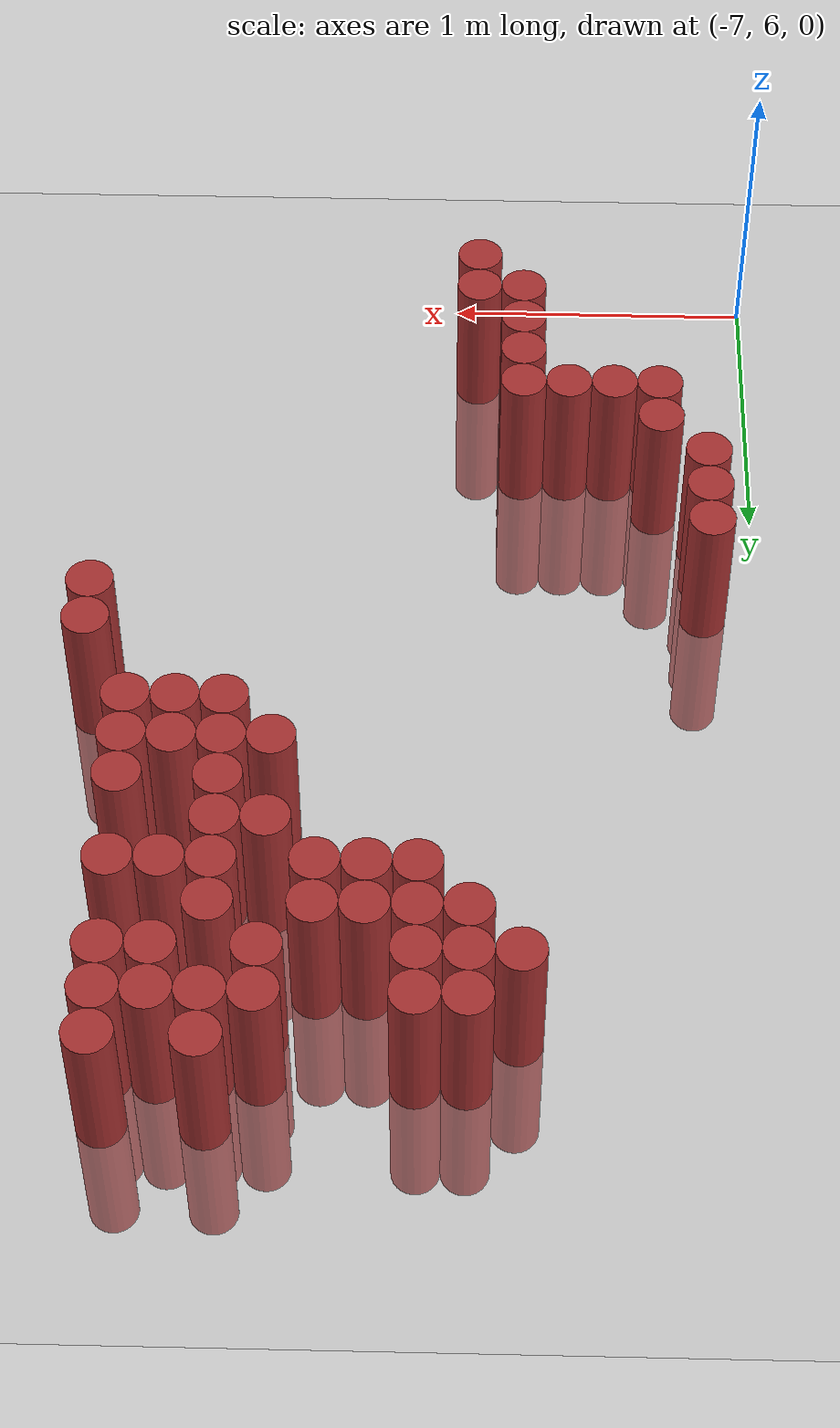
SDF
<sdf version="1.6">
 <world name="default">
  <model name="ground_plane">
   <static>1</static>
   <link name="link">
    <collision name="collision">
     <geometry><plane><normal>0 0 1</normal><size>100 100</size></plane></geometry>
     <surface><friction><ode><mu>100</mu><mu2>50</mu2></ode></friction></surface>
    </collision>
    <visual name="visual">
     <cast_shadows>0</cast_shadows>
     <geometry><plane><normal>0 0 1</normal><size>100 100</size></plane></geometry>
     <material>
      <script><uri>file://media/materials/scripts/gazebo.material</uri><name>Gazebo/Grey</name></script>
     </material>
    </visual>
   </link>
  </model>
  <model name="unit_cylinder_197">
   <static>1</static>
   <pose>-6.825000 7.125000 0.000000 0.000000 0.000000 0.000000</pose>
   <link name="link">
    <inertial>
     <mass>1</mass>
     <inertia><ixx>0.145833</ixx><ixy>0</ixy><ixz>0</ixz><iyy>0.145833</iyy><iyz>0</iyz><izz>0.125</izz></inertia>
    </inertial>
    <collision name="collision">
     <geometry><cylinder><radius>0.075000</radius><length>1</length></cylinder></geometry>
    </collision>
    <visual name="visual">
     <geometry><cylinder><radius>0.075000</radius><length>1</length></cylinder></geometry>
     <material>
      <ambient>0.648000 0.192000 0.192000 1</ambient>
      <diffuse>0.648000 0.192000 0.192000 1</diffuse>
     </material>
     <material>
      <script><name>Gazebo/Grey</name><uri>file://media/materials/scripts/gazebo.material</uri></script>
     </material>
    </visual>
   </link>
  </model>
  <model name="unit_cylinder_198">
   <static>1</static>
   <pose>-6.825000 7.275000 0.000000 0.000000 0.000000 0.000000</pose>
   <link name="link">
    <inertial>
     <mass>1</mass>
     <inertia><ixx>0.145833</ixx><ixy>0</ixy><ixz>0</ixz><iyy>0.145833</iyy><iyz>0</iyz><izz>0.125</izz></inertia>
    </inertial>
    <collision name="collision">
     <geometry><cylinder><radius>0.075000</radius><length>1</length></cylinder></geometry>
    </collision>
    <visual name="visual">
     <geometry><cylinder><radius>0.075000</radius><length>1</length></cylinder></geometry>
     <material>
      <ambient>0.648000 0.192000 0.192000 1</ambient>
      <diffuse>0.648000 0.192000 0.192000 1</diffuse>
     </material>
     <material>
      <script><name>Gazebo/Grey</name><uri>file://media/materials/scripts/gazebo.material</uri></script>
     </material>
    </visual>
   </link>
  </model>
  <model name="unit_cylinder_199">
   <static>1</static>
   <pose>-6.825000 7.425000 0.000000 0.000000 0.000000 0.000000</pose>
   <link name="link">
    <inertial>
     <mass>1</mass>
     <inertia><ixx>0.145833</ixx><ixy>0</ixy><ixz>0</ixz><iyy>0.145833</iyy><iyz>0</iyz><izz>0.125</izz></inertia>
    </inertial>
    <collision name="collision">
     <geometry><cylinder><radius>0.075000</radius><length>1</length></cylinder></geometry>
    </collision>
    <visual name="visual">
     <geometry><cylinder><radius>0.075000</radius><length>1</length></cylinder></geometry>
     <material>
      <ambient>0.648000 0.192000 0.192000 1</ambient>
      <diffuse>0.648000 0.192000 0.192000 1</diffuse>
     </material>
     <material>
      <script><name>Gazebo/Grey</name><uri>file://media/materials/scripts/gazebo.material</uri></script>
     </material>
    </visual>
   </link>
  </model>
  <model name="unit_cylinder_201">
   <static>1</static>
   <pose>-6.675000 6.825000 0.000000 0.000000 0.000000 0.000000</pose>
   <link name="link">
    <inertial>
     <mass>1</mass>
     <inertia><ixx>0.145833</ixx><ixy>0</ixy><ixz>0</ixz><iyy>0.145833</iyy><iyz>0</iyz><izz>0.125</izz></inertia>
    </inertial>
    <collision name="collision">
     <geometry><cylinder><radius>0.075000</radius><length>1</length></cylinder></geometry>
    </collision>
    <visual name="visual">
     <geometry><cylinder><radius>0.075000</radius><length>1</length></cylinder></geometry>
     <material>
      <ambient>0.648000 0.192000 0.192000 1</ambient>
      <diffuse>0.648000 0.192000 0.192000 1</diffuse>
     </material>
     <material>
      <script><name>Gazebo/Grey</name><uri>file://media/materials/scripts/gazebo.material</uri></script>
     </material>
    </visual>
   </link>
  </model>
  <model name="unit_cylinder_202">
   <static>1</static>
   <pose>-6.675000 6.975000 0.000000 0.000000 0.000000 0.000000</pose>
   <link name="link">
    <inertial>
     <mass>1</mass>
     <inertia><ixx>0.145833</ixx><ixy>0</ixy><ixz>0</ixz><iyy>0.145833</iyy><iyz>0</iyz><izz>0.125</izz></inertia>
    </inertial>
    <collision name="collision">
     <geometry><cylinder><radius>0.075000</radius><length>1</length></cylinder></geometry>
    </collision>
    <visual name="visual">
     <geometry><cylinder><radius>0.075000</radius><length>1</length></cylinder></geometry>
     <material>
      <ambient>0.648000 0.192000 0.192000 1</ambient>
      <diffuse>0.648000 0.192000 0.192000 1</diffuse>
     </material>
     <material>
      <script><name>Gazebo/Grey</name><uri>file://media/materials/scripts/gazebo.material</uri></script>
     </material>
    </visual>
   </link>
  </model>
  <model name="unit_cylinder_204">
   <static>1</static>
   <pose>-6.525000 6.825000 0.000000 0.000000 0.000000 0.000000</pose>
   <link name="link">
    <inertial>
     <mass>1</mass>
     <inertia><ixx>0.145833</ixx><ixy>0</ixy><ixz>0</ixz><iyy>0.145833</iyy><iyz>0</iyz><izz>0.125</izz></inertia>
    </inertial>
    <collision name="collision">
     <geometry><cylinder><radius>0.075000</radius><length>1</length></cylinder></geometry>
    </collision>
    <visual name="visual">
     <geometry><cylinder><radius>0.075000</radius><length>1</length></cylinder></geometry>
     <material>
      <ambient>0.648000 0.192000 0.192000 1</ambient>
      <diffuse>0.648000 0.192000 0.192000 1</diffuse>
     </material>
     <material>
      <script><name>Gazebo/Grey</name><uri>file://media/materials/scripts/gazebo.material</uri></script>
     </material>
    </visual>
   </link>
  </model>
  <model name="unit_cylinder_206">
   <static>1</static>
   <pose>-6.375000 6.825000 0.000000 0.000000 0.000000 0.000000</pose>
   <link name="link">
    <inertial>
     <mass>1</mass>
     <inertia><ixx>0.145833</ixx><ixy>0</ixy><ixz>0</ixz><iyy>0.145833</iyy><iyz>0</iyz><izz>0.125</izz></inertia>
    </inertial>
    <collision name="collision">
     <geometry><cylinder><radius>0.075000</radius><length>1</length></cylinder></geometry>
    </collision>
    <visual name="visual">
     <geometry><cylinder><radius>0.075000</radius><length>1</length></cylinder></geometry>
     <material>
      <ambient>0.648000 0.192000 0.192000 1</ambient>
      <diffuse>0.648000 0.192000 0.192000 1</diffuse>
     </material>
     <material>
      <script><name>Gazebo/Grey</name><uri>file://media/materials/scripts/gazebo.material</uri></script>
     </material>
    </visual>
   </link>
  </model>
  <model name="unit_cylinder_208">
   <static>1</static>
   <pose>-6.225000 6.375000 0.000000 0.000000 0.000000 0.000000</pose>
   <link name="link">
    <inertial>
     <mass>1</mass>
     <inertia><ixx>0.145833</ixx><ixy>0</ixy><ixz>0</ixz><iyy>0.145833</iyy><iyz>0</iyz><izz>0.125</izz></inertia>
    </inertial>
    <collision name="collision">
     <geometry><cylinder><radius>0.075000</radius><length>1</length></cylinder></geometry>
    </collision>
    <visual name="visual">
     <geometry><cylinder><radius>0.075000</radius><length>1</length></cylinder></geometry>
     <material>
      <ambient>0.648000 0.192000 0.192000 1</ambient>
      <diffuse>0.648000 0.192000 0.192000 1</diffuse>
     </material>
     <material>
      <script><name>Gazebo/Grey</name><uri>file://media/materials/scripts/gazebo.material</uri></script>
     </material>
    </visual>
   </link>
  </model>
  <model name="unit_cylinder_209">
   <static>1</static>
   <pose>-6.225000 6.525000 0.000000 0.000000 0.000000 0.000000</pose>
   <link name="link">
    <inertial>
     <mass>1</mass>
     <inertia><ixx>0.145833</ixx><ixy>0</ixy><ixz>0</ixz><iyy>0.145833</iyy><iyz>0</iyz><izz>0.125</izz></inertia>
    </inertial>
    <collision name="collision">
     <geometry><cylinder><radius>0.075000</radius><length>1</length></cylinder></geometry>
    </collision>
    <visual name="visual">
     <geometry><cylinder><radius>0.075000</radius><length>1</length></cylinder></geometry>
     <material>
      <ambient>0.648000 0.192000 0.192000 1</ambient>
      <diffuse>0.648000 0.192000 0.192000 1</diffuse>
     </material>
     <material>
      <script><name>Gazebo/Grey</name><uri>file://media/materials/scripts/gazebo.material</uri></script>
     </material>
    </visual>
   </link>
  </model>
  <model name="unit_cylinder_210">
   <static>1</static>
   <pose>-6.225000 6.675000 0.000000 0.000000 0.000000 0.000000</pose>
   <link name="link">
    <inertial>
     <mass>1</mass>
     <inertia><ixx>0.145833</ixx><ixy>0</ixy><ixz>0</ixz><iyy>0.145833</iyy><iyz>0</iyz><izz>0.125</izz></inertia>
    </inertial>
    <collision name="collision">
     <geometry><cylinder><radius>0.075000</radius><length>1</length></cylinder></geometry>
    </collision>
    <visual name="visual">
     <geometry><cylinder><radius>0.075000</radius><length>1</length></cylinder></geometry>
     <material>
      <ambient>0.648000 0.192000 0.192000 1</ambient>
      <diffuse>0.648000 0.192000 0.192000 1</diffuse>
     </material>
     <material>
      <script><name>Gazebo/Grey</name><uri>file://media/materials/scripts/gazebo.material</uri></script>
     </material>
    </visual>
   </link>
  </model>
  <model name="unit_cylinder_211">
   <static>1</static>
   <pose>-6.225000 6.825000 0.000000 0.000000 0.000000 0.000000</pose>
   <link name="link">
    <inertial>
     <mass>1</mass>
     <inertia><ixx>0.145833</ixx><ixy>0</ixy><ixz>0</ixz><iyy>0.145833</iyy><iyz>0</iyz><izz>0.125</izz></inertia>
    </inertial>
    <collision name="collision">
     <geometry><cylinder><radius>0.075000</radius><length>1</length></cylinder></geometry>
    </collision>
    <visual name="visual">
     <geometry><cylinder><radius>0.075000</radius><length>1</length></cylinder></geometry>
     <material>
      <ambient>0.648000 0.192000 0.192000 1</ambient>
      <diffuse>0.648000 0.192000 0.192000 1</diffuse>
     </material>
     <material>
      <script><name>Gazebo/Grey</name><uri>file://media/materials/scripts/gazebo.material</uri></script>
     </material>
    </visual>
   </link>
  </model>
  <model name="unit_cylinder_212">
   <static>1</static>
   <pose>-6.225000 9.075000 0.000000 0.000000 0.000000 0.000000</pose>
   <link name="link">
    <inertial>
     <mass>1</mass>
     <inertia><ixx>0.145833</ixx><ixy>0</ixy><ixz>0</ixz><iyy>0.145833</iyy><iyz>0</iyz><izz>0.125</izz></inertia>
    </inertial>
    <collision name="collision">
     <geometry><cylinder><radius>0.075000</radius><length>1</length></cylinder></geometry>
    </collision>
    <visual name="visual">
     <geometry><cylinder><radius>0.075000</radius><length>1</length></cylinder></geometry>
     <material>
      <ambient>0.648000 0.192000 0.192000 1</ambient>
      <diffuse>0.648000 0.192000 0.192000 1</diffuse>
     </material>
     <material>
      <script><name>Gazebo/Grey</name><uri>file://media/materials/scripts/gazebo.material</uri></script>
     </material>
    </visual>
   </link>
  </model>
  <model name="unit_cylinder_220">
   <static>1</static>
   <pose>-6.075000 6.225000 0.000000 0.000000 0.000000 0.000000</pose>
   <link name="link">
    <inertial>
     <mass>1</mass>
     <inertia><ixx>0.145833</ixx><ixy>0</ixy><ixz>0</ixz><iyy>0.145833</iyy><iyz>0</iyz><izz>0.125</izz></inertia>
    </inertial>
    <collision name="collision">
     <geometry><cylinder><radius>0.075000</radius><length>1</length></cylinder></geometry>
    </collision>
    <visual name="visual">
     <geometry><cylinder><radius>0.075000</radius><length>1</length></cylinder></geometry>
     <material>
      <ambient>0.648000 0.192000 0.192000 1</ambient>
      <diffuse>0.648000 0.192000 0.192000 1</diffuse>
     </material>
     <material>
      <script><name>Gazebo/Grey</name><uri>file://media/materials/scripts/gazebo.material</uri></script>
     </material>
    </visual>
   </link>
  </model>
  <model name="unit_cylinder_221">
   <static>1</static>
   <pose>-6.075000 6.375000 0.000000 0.000000 0.000000 0.000000</pose>
   <link name="link">
    <inertial>
     <mass>1</mass>
     <inertia><ixx>0.145833</ixx><ixy>0</ixy><ixz>0</ixz><iyy>0.145833</iyy><iyz>0</iyz><izz>0.125</izz></inertia>
    </inertial>
    <collision name="collision">
     <geometry><cylinder><radius>0.075000</radius><length>1</length></cylinder></geometry>
    </collision>
    <visual name="visual">
     <geometry><cylinder><radius>0.075000</radius><length>1</length></cylinder></geometry>
     <material>
      <ambient>0.648000 0.192000 0.192000 1</ambient>
      <diffuse>0.648000 0.192000 0.192000 1</diffuse>
     </material>
     <material>
      <script><name>Gazebo/Grey</name><uri>file://media/materials/scripts/gazebo.material</uri></script>
     </material>
    </visual>
   </link>
  </model>
  <model name="unit_cylinder_222">
   <static>1</static>
   <pose>-6.075000 8.925000 0.000000 0.000000 0.000000 0.000000</pose>
   <link name="link">
    <inertial>
     <mass>1</mass>
     <inertia><ixx>0.145833</ixx><ixy>0</ixy><ixz>0</ixz><iyy>0.145833</iyy><iyz>0</iyz><izz>0.125</izz></inertia>
    </inertial>
    <collision name="collision">
     <geometry><cylinder><radius>0.075000</radius><length>1</length></cylinder></geometry>
    </collision>
    <visual name="visual">
     <geometry><cylinder><radius>0.075000</radius><length>1</length></cylinder></geometry>
     <material>
      <ambient>0.648000 0.192000 0.192000 1</ambient>
      <diffuse>0.648000 0.192000 0.192000 1</diffuse>
     </material>
     <material>
      <script><name>Gazebo/Grey</name><uri>file://media/materials/scripts/gazebo.material</uri></script>
     </material>
    </visual>
   </link>
  </model>
  <model name="unit_cylinder_223">
   <static>1</static>
   <pose>-6.075000 9.075000 0.000000 0.000000 0.000000 0.000000</pose>
   <link name="link">
    <inertial>
     <mass>1</mass>
     <inertia><ixx>0.145833</ixx><ixy>0</ixy><ixz>0</ixz><iyy>0.145833</iyy><iyz>0</iyz><izz>0.125</izz></inertia>
    </inertial>
    <collision name="collision">
     <geometry><cylinder><radius>0.075000</radius><length>1</length></cylinder></geometry>
    </collision>
    <visual name="visual">
     <geometry><cylinder><radius>0.075000</radius><length>1</length></cylinder></geometry>
     <material>
      <ambient>0.648000 0.192000 0.192000 1</ambient>
      <diffuse>0.648000 0.192000 0.192000 1</diffuse>
     </material>
     <material>
      <script><name>Gazebo/Grey</name><uri>file://media/materials/scripts/gazebo.material</uri></script>
     </material>
    </visual>
   </link>
  </model>
  <model name="unit_cylinder_224">
   <static>1</static>
   <pose>-6.075000 9.225000 0.000000 0.000000 0.000000 0.000000</pose>
   <link name="link">
    <inertial>
     <mass>1</mass>
     <inertia><ixx>0.145833</ixx><ixy>0</ixy><ixz>0</ixz><iyy>0.145833</iyy><iyz>0</iyz><izz>0.125</izz></inertia>
    </inertial>
    <collision name="collision">
     <geometry><cylinder><radius>0.075000</radius><length>1</length></cylinder></geometry>
    </collision>
    <visual name="visual">
     <geometry><cylinder><radius>0.075000</radius><length>1</length></cylinder></geometry>
     <material>
      <ambient>0.648000 0.192000 0.192000 1</ambient>
      <diffuse>0.648000 0.192000 0.192000 1</diffuse>
     </material>
     <material>
      <script><name>Gazebo/Grey</name><uri>file://media/materials/scripts/gazebo.material</uri></script>
     </material>
    </visual>
   </link>
  </model>
  <model name="unit_cylinder_225">
   <static>1</static>
   <pose>-5.925000 8.775000 0.000000 0.000000 0.000000 0.000000</pose>
   <link name="link">
    <inertial>
     <mass>1</mass>
     <inertia><ixx>0.145833</ixx><ixy>0</ixy><ixz>0</ixz><iyy>0.145833</iyy><iyz>0</iyz><izz>0.125</izz></inertia>
    </inertial>
    <collision name="collision">
     <geometry><cylinder><radius>0.075000</radius><length>1</length></cylinder></geometry>
    </collision>
    <visual name="visual">
     <geometry><cylinder><radius>0.075000</radius><length>1</length></cylinder></geometry>
     <material>
      <ambient>0.648000 0.192000 0.192000 1</ambient>
      <diffuse>0.648000 0.192000 0.192000 1</diffuse>
     </material>
     <material>
      <script><name>Gazebo/Grey</name><uri>file://media/materials/scripts/gazebo.material</uri></script>
     </material>
    </visual>
   </link>
  </model>
  <model name="unit_cylinder_226">
   <static>1</static>
   <pose>-5.925000 8.925000 0.000000 0.000000 0.000000 0.000000</pose>
   <link name="link">
    <inertial>
     <mass>1</mass>
     <inertia><ixx>0.145833</ixx><ixy>0</ixy><ixz>0</ixz><iyy>0.145833</iyy><iyz>0</iyz><izz>0.125</izz></inertia>
    </inertial>
    <collision name="collision">
     <geometry><cylinder><radius>0.075000</radius><length>1</length></cylinder></geometry>
    </collision>
    <visual name="visual">
     <geometry><cylinder><radius>0.075000</radius><length>1</length></cylinder></geometry>
     <material>
      <ambient>0.648000 0.192000 0.192000 1</ambient>
      <diffuse>0.648000 0.192000 0.192000 1</diffuse>
     </material>
     <material>
      <script><name>Gazebo/Grey</name><uri>file://media/materials/scripts/gazebo.material</uri></script>
     </material>
    </visual>
   </link>
  </model>
  <model name="unit_cylinder_227">
   <static>1</static>
   <pose>-5.925000 9.075000 0.000000 0.000000 0.000000 0.000000</pose>
   <link name="link">
    <inertial>
     <mass>1</mass>
     <inertia><ixx>0.145833</ixx><ixy>0</ixy><ixz>0</ixz><iyy>0.145833</iyy><iyz>0</iyz><izz>0.125</izz></inertia>
    </inertial>
    <collision name="collision">
     <geometry><cylinder><radius>0.075000</radius><length>1</length></cylinder></geometry>
    </collision>
    <visual name="visual">
     <geometry><cylinder><radius>0.075000</radius><length>1</length></cylinder></geometry>
     <material>
      <ambient>0.648000 0.192000 0.192000 1</ambient>
      <diffuse>0.648000 0.192000 0.192000 1</diffuse>
     </material>
     <material>
      <script><name>Gazebo/Grey</name><uri>file://media/materials/scripts/gazebo.material</uri></script>
     </material>
    </visual>
   </link>
  </model>
  <model name="unit_cylinder_228">
   <static>1</static>
   <pose>-5.925000 9.225000 0.000000 0.000000 0.000000 0.000000</pose>
   <link name="link">
    <inertial>
     <mass>1</mass>
     <inertia><ixx>0.145833</ixx><ixy>0</ixy><ixz>0</ixz><iyy>0.145833</iyy><iyz>0</iyz><izz>0.125</izz></inertia>
    </inertial>
    <collision name="collision">
     <geometry><cylinder><radius>0.075000</radius><length>1</length></cylinder></geometry>
    </collision>
    <visual name="visual">
     <geometry><cylinder><radius>0.075000</radius><length>1</length></cylinder></geometry>
     <material>
      <ambient>0.648000 0.192000 0.192000 1</ambient>
      <diffuse>0.648000 0.192000 0.192000 1</diffuse>
     </material>
     <material>
      <script><name>Gazebo/Grey</name><uri>file://media/materials/scripts/gazebo.material</uri></script>
     </material>
    </visual>
   </link>
  </model>
  <model name="unit_cylinder_229">
   <static>1</static>
   <pose>-5.775000 8.775000 0.000000 0.000000 0.000000 0.000000</pose>
   <link name="link">
    <inertial>
     <mass>1</mass>
     <inertia><ixx>0.145833</ixx><ixy>0</ixy><ixz>0</ixz><iyy>0.145833</iyy><iyz>0</iyz><izz>0.125</izz></inertia>
    </inertial>
    <collision name="collision">
     <geometry><cylinder><radius>0.075000</radius><length>1</length></cylinder></geometry>
    </collision>
    <visual name="visual">
     <geometry><cylinder><radius>0.075000</radius><length>1</length></cylinder></geometry>
     <material>
      <ambient>0.648000 0.192000 0.192000 1</ambient>
      <diffuse>0.648000 0.192000 0.192000 1</diffuse>
     </material>
     <material>
      <script><name>Gazebo/Grey</name><uri>file://media/materials/scripts/gazebo.material</uri></script>
     </material>
    </visual>
   </link>
  </model>
  <model name="unit_cylinder_230">
   <static>1</static>
   <pose>-5.775000 8.925000 0.000000 0.000000 0.000000 0.000000</pose>
   <link name="link">
    <inertial>
     <mass>1</mass>
     <inertia><ixx>0.145833</ixx><ixy>0</ixy><ixz>0</ixz><iyy>0.145833</iyy><iyz>0</iyz><izz>0.125</izz></inertia>
    </inertial>
    <collision name="collision">
     <geometry><cylinder><radius>0.075000</radius><length>1</length></cylinder></geometry>
    </collision>
    <visual name="visual">
     <geometry><cylinder><radius>0.075000</radius><length>1</length></cylinder></geometry>
     <material>
      <ambient>0.648000 0.192000 0.192000 1</ambient>
      <diffuse>0.648000 0.192000 0.192000 1</diffuse>
     </material>
     <material>
      <script><name>Gazebo/Grey</name><uri>file://media/materials/scripts/gazebo.material</uri></script>
     </material>
    </visual>
   </link>
  </model>
  <model name="unit_cylinder_231">
   <static>1</static>
   <pose>-5.625000 8.775000 0.000000 0.000000 0.000000 0.000000</pose>
   <link name="link">
    <inertial>
     <mass>1</mass>
     <inertia><ixx>0.145833</ixx><ixy>0</ixy><ixz>0</ixz><iyy>0.145833</iyy><iyz>0</iyz><izz>0.125</izz></inertia>
    </inertial>
    <collision name="collision">
     <geometry><cylinder><radius>0.075000</radius><length>1</length></cylinder></geometry>
    </collision>
    <visual name="visual">
     <geometry><cylinder><radius>0.075000</radius><length>1</length></cylinder></geometry>
     <material>
      <ambient>0.648000 0.192000 0.192000 1</ambient>
      <diffuse>0.648000 0.192000 0.192000 1</diffuse>
     </material>
     <material>
      <script><name>Gazebo/Grey</name><uri>file://media/materials/scripts/gazebo.material</uri></script>
     </material>
    </visual>
   </link>
  </model>
  <model name="unit_cylinder_232">
   <static>1</static>
   <pose>-5.625000 8.925000 0.000000 0.000000 0.000000 0.000000</pose>
   <link name="link">
    <inertial>
     <mass>1</mass>
     <inertia><ixx>0.145833</ixx><ixy>0</ixy><ixz>0</ixz><iyy>0.145833</iyy><iyz>0</iyz><izz>0.125</izz></inertia>
    </inertial>
    <collision name="collision">
     <geometry><cylinder><radius>0.075000</radius><length>1</length></cylinder></geometry>
    </collision>
    <visual name="visual">
     <geometry><cylinder><radius>0.075000</radius><length>1</length></cylinder></geometry>
     <material>
      <ambient>0.648000 0.192000 0.192000 1</ambient>
      <diffuse>0.648000 0.192000 0.192000 1</diffuse>
     </material>
     <material>
      <script><name>Gazebo/Grey</name><uri>file://media/materials/scripts/gazebo.material</uri></script>
     </material>
    </visual>
   </link>
  </model>
  <model name="unit_cylinder_233">
   <static>1</static>
   <pose>-5.475000 8.325000 0.000000 0.000000 0.000000 0.000000</pose>
   <link name="link">
    <inertial>
     <mass>1</mass>
     <inertia><ixx>0.145833</ixx><ixy>0</ixy><ixz>0</ixz><iyy>0.145833</iyy><iyz>0</iyz><izz>0.125</izz></inertia>
    </inertial>
    <collision name="collision">
     <geometry><cylinder><radius>0.075000</radius><length>1</length></cylinder></geometry>
    </collision>
    <visual name="visual">
     <geometry><cylinder><radius>0.075000</radius><length>1</length></cylinder></geometry>
     <material>
      <ambient>0.648000 0.192000 0.192000 1</ambient>
      <diffuse>0.648000 0.192000 0.192000 1</diffuse>
     </material>
     <material>
      <script><name>Gazebo/Grey</name><uri>file://media/materials/scripts/gazebo.material</uri></script>
     </material>
    </visual>
   </link>
  </model>
  <model name="unit_cylinder_234">
   <static>1</static>
   <pose>-5.475000 8.625000 0.000000 0.000000 0.000000 0.000000</pose>
   <link name="link">
    <inertial>
     <mass>1</mass>
     <inertia><ixx>0.145833</ixx><ixy>0</ixy><ixz>0</ixz><iyy>0.145833</iyy><iyz>0</iyz><izz>0.125</izz></inertia>
    </inertial>
    <collision name="collision">
     <geometry><cylinder><radius>0.075000</radius><length>1</length></cylinder></geometry>
    </collision>
    <visual name="visual">
     <geometry><cylinder><radius>0.075000</radius><length>1</length></cylinder></geometry>
     <material>
      <ambient>0.648000 0.192000 0.192000 1</ambient>
      <diffuse>0.648000 0.192000 0.192000 1</diffuse>
     </material>
     <material>
      <script><name>Gazebo/Grey</name><uri>file://media/materials/scripts/gazebo.material</uri></script>
     </material>
    </visual>
   </link>
  </model>
  <model name="unit_cylinder_235">
   <static>1</static>
   <pose>-5.475000 9.075000 0.000000 0.000000 0.000000 0.000000</pose>
   <link name="link">
    <inertial>
     <mass>1</mass>
     <inertia><ixx>0.145833</ixx><ixy>0</ixy><ixz>0</ixz><iyy>0.145833</iyy><iyz>0</iyz><izz>0.125</izz></inertia>
    </inertial>
    <collision name="collision">
     <geometry><cylinder><radius>0.075000</radius><length>1</length></cylinder></geometry>
    </collision>
    <visual name="visual">
     <geometry><cylinder><radius>0.075000</radius><length>1</length></cylinder></geometry>
     <material>
      <ambient>0.648000 0.192000 0.192000 1</ambient>
      <diffuse>0.648000 0.192000 0.192000 1</diffuse>
     </material>
     <material>
      <script><name>Gazebo/Grey</name><uri>file://media/materials/scripts/gazebo.material</uri></script>
     </material>
    </visual>
   </link>
  </model>
  <model name="unit_cylinder_236">
   <static>1</static>
   <pose>-5.475000 9.225000 0.000000 0.000000 0.000000 0.000000</pose>
   <link name="link">
    <inertial>
     <mass>1</mass>
     <inertia><ixx>0.145833</ixx><ixy>0</ixy><ixz>0</ixz><iyy>0.145833</iyy><iyz>0</iyz><izz>0.125</izz></inertia>
    </inertial>
    <collision name="collision">
     <geometry><cylinder><radius>0.075000</radius><length>1</length></cylinder></geometry>
    </collision>
    <visual name="visual">
     <geometry><cylinder><radius>0.075000</radius><length>1</length></cylinder></geometry>
     <material>
      <ambient>0.648000 0.192000 0.192000 1</ambient>
      <diffuse>0.648000 0.192000 0.192000 1</diffuse>
     </material>
     <material>
      <script><name>Gazebo/Grey</name><uri>file://media/materials/scripts/gazebo.material</uri></script>
     </material>
    </visual>
   </link>
  </model>
  <model name="unit_cylinder_237">
   <static>1</static>
   <pose>-5.325000 8.175000 0.000000 0.000000 0.000000 0.000000</pose>
   <link name="link">
    <inertial>
     <mass>1</mass>
     <inertia><ixx>0.145833</ixx><ixy>0</ixy><ixz>0</ixz><iyy>0.145833</iyy><iyz>0</iyz><izz>0.125</izz></inertia>
    </inertial>
    <collision name="collision">
     <geometry><cylinder><radius>0.075000</radius><length>1</length></cylinder></geometry>
    </collision>
    <visual name="visual">
     <geometry><cylinder><radius>0.075000</radius><length>1</length></cylinder></geometry>
     <material>
      <ambient>0.648000 0.192000 0.192000 1</ambient>
      <diffuse>0.648000 0.192000 0.192000 1</diffuse>
     </material>
     <material>
      <script><name>Gazebo/Grey</name><uri>file://media/materials/scripts/gazebo.material</uri></script>
     </material>
    </visual>
   </link>
  </model>
  <model name="unit_cylinder_238">
   <static>1</static>
   <pose>-5.325000 8.325000 0.000000 0.000000 0.000000 0.000000</pose>
   <link name="link">
    <inertial>
     <mass>1</mass>
     <inertia><ixx>0.145833</ixx><ixy>0</ixy><ixz>0</ixz><iyy>0.145833</iyy><iyz>0</iyz><izz>0.125</izz></inertia>
    </inertial>
    <collision name="collision">
     <geometry><cylinder><radius>0.075000</radius><length>1</length></cylinder></geometry>
    </collision>
    <visual name="visual">
     <geometry><cylinder><radius>0.075000</radius><length>1</length></cylinder></geometry>
     <material>
      <ambient>0.648000 0.192000 0.192000 1</ambient>
      <diffuse>0.648000 0.192000 0.192000 1</diffuse>
     </material>
     <material>
      <script><name>Gazebo/Grey</name><uri>file://media/materials/scripts/gazebo.material</uri></script>
     </material>
    </visual>
   </link>
  </model>
  <model name="unit_cylinder_239">
   <static>1</static>
   <pose>-5.325000 8.475000 0.000000 0.000000 0.000000 0.000000</pose>
   <link name="link">
    <inertial>
     <mass>1</mass>
     <inertia><ixx>0.145833</ixx><ixy>0</ixy><ixz>0</ixz><iyy>0.145833</iyy><iyz>0</iyz><izz>0.125</izz></inertia>
    </inertial>
    <collision name="collision">
     <geometry><cylinder><radius>0.075000</radius><length>1</length></cylinder></geometry>
    </collision>
    <visual name="visual">
     <geometry><cylinder><radius>0.075000</radius><length>1</length></cylinder></geometry>
     <material>
      <ambient>0.648000 0.192000 0.192000 1</ambient>
      <diffuse>0.648000 0.192000 0.192000 1</diffuse>
     </material>
     <material>
      <script><name>Gazebo/Grey</name><uri>file://media/materials/scripts/gazebo.material</uri></script>
     </material>
    </visual>
   </link>
  </model>
  <model name="unit_cylinder_240">
   <static>1</static>
   <pose>-5.325000 8.625000 0.000000 0.000000 0.000000 0.000000</pose>
   <link name="link">
    <inertial>
     <mass>1</mass>
     <inertia><ixx>0.145833</ixx><ixy>0</ixy><ixz>0</ixz><iyy>0.145833</iyy><iyz>0</iyz><izz>0.125</izz></inertia>
    </inertial>
    <collision name="collision">
     <geometry><cylinder><radius>0.075000</radius><length>1</length></cylinder></geometry>
    </collision>
    <visual name="visual">
     <geometry><cylinder><radius>0.075000</radius><length>1</length></cylinder></geometry>
     <material>
      <ambient>0.648000 0.192000 0.192000 1</ambient>
      <diffuse>0.648000 0.192000 0.192000 1</diffuse>
     </material>
     <material>
      <script><name>Gazebo/Grey</name><uri>file://media/materials/scripts/gazebo.material</uri></script>
     </material>
    </visual>
   </link>
  </model>
  <model name="unit_cylinder_241">
   <static>1</static>
   <pose>-5.325000 8.775000 0.000000 0.000000 0.000000 0.000000</pose>
   <link name="link">
    <inertial>
     <mass>1</mass>
     <inertia><ixx>0.145833</ixx><ixy>0</ixy><ixz>0</ixz><iyy>0.145833</iyy><iyz>0</iyz><izz>0.125</izz></inertia>
    </inertial>
    <collision name="collision">
     <geometry><cylinder><radius>0.075000</radius><length>1</length></cylinder></geometry>
    </collision>
    <visual name="visual">
     <geometry><cylinder><radius>0.075000</radius><length>1</length></cylinder></geometry>
     <material>
      <ambient>0.648000 0.192000 0.192000 1</ambient>
      <diffuse>0.648000 0.192000 0.192000 1</diffuse>
     </material>
     <material>
      <script><name>Gazebo/Grey</name><uri>file://media/materials/scripts/gazebo.material</uri></script>
     </material>
    </visual>
   </link>
  </model>
  <model name="unit_cylinder_242">
   <static>1</static>
   <pose>-5.325000 8.925000 0.000000 0.000000 0.000000 0.000000</pose>
   <link name="link">
    <inertial>
     <mass>1</mass>
     <inertia><ixx>0.145833</ixx><ixy>0</ixy><ixz>0</ixz><iyy>0.145833</iyy><iyz>0</iyz><izz>0.125</izz></inertia>
    </inertial>
    <collision name="collision">
     <geometry><cylinder><radius>0.075000</radius><length>1</length></cylinder></geometry>
    </collision>
    <visual name="visual">
     <geometry><cylinder><radius>0.075000</radius><length>1</length></cylinder></geometry>
     <material>
      <ambient>0.648000 0.192000 0.192000 1</ambient>
      <diffuse>0.648000 0.192000 0.192000 1</diffuse>
     </material>
     <material>
      <script><name>Gazebo/Grey</name><uri>file://media/materials/scripts/gazebo.material</uri></script>
     </material>
    </visual>
   </link>
  </model>
  <model name="unit_cylinder_243">
   <static>1</static>
   <pose>-5.325000 9.225000 0.000000 0.000000 0.000000 0.000000</pose>
   <link name="link">
    <inertial>
     <mass>1</mass>
     <inertia><ixx>0.145833</ixx><ixy>0</ixy><ixz>0</ixz><iyy>0.145833</iyy><iyz>0</iyz><izz>0.125</izz></inertia>
    </inertial>
    <collision name="collision">
     <geometry><cylinder><radius>0.075000</radius><length>1</length></cylinder></geometry>
    </collision>
    <visual name="visual">
     <geometry><cylinder><radius>0.075000</radius><length>1</length></cylinder></geometry>
     <material>
      <ambient>0.648000 0.192000 0.192000 1</ambient>
      <diffuse>0.648000 0.192000 0.192000 1</diffuse>
     </material>
     <material>
      <script><name>Gazebo/Grey</name><uri>file://media/materials/scripts/gazebo.material</uri></script>
     </material>
    </visual>
   </link>
  </model>
  <model name="unit_cylinder_244">
   <static>1</static>
   <pose>-5.325000 9.375000 0.000000 0.000000 0.000000 0.000000</pose>
   <link name="link">
    <inertial>
     <mass>1</mass>
     <inertia><ixx>0.145833</ixx><ixy>0</ixy><ixz>0</ixz><iyy>0.145833</iyy><iyz>0</iyz><izz>0.125</izz></inertia>
    </inertial>
    <collision name="collision">
     <geometry><cylinder><radius>0.075000</radius><length>1</length></cylinder></geometry>
    </collision>
    <visual name="visual">
     <geometry><cylinder><radius>0.075000</radius><length>1</length></cylinder></geometry>
     <material>
      <ambient>0.648000 0.192000 0.192000 1</ambient>
      <diffuse>0.648000 0.192000 0.192000 1</diffuse>
     </material>
     <material>
      <script><name>Gazebo/Grey</name><uri>file://media/materials/scripts/gazebo.material</uri></script>
     </material>
    </visual>
   </link>
  </model>
  <model name="unit_cylinder_245">
   <static>1</static>
   <pose>-5.175000 8.175000 0.000000 0.000000 0.000000 0.000000</pose>
   <link name="link">
    <inertial>
     <mass>1</mass>
     <inertia><ixx>0.145833</ixx><ixy>0</ixy><ixz>0</ixz><iyy>0.145833</iyy><iyz>0</iyz><izz>0.125</izz></inertia>
    </inertial>
    <collision name="collision">
     <geometry><cylinder><radius>0.075000</radius><length>1</length></cylinder></geometry>
    </collision>
    <visual name="visual">
     <geometry><cylinder><radius>0.075000</radius><length>1</length></cylinder></geometry>
     <material>
      <ambient>0.648000 0.192000 0.192000 1</ambient>
      <diffuse>0.648000 0.192000 0.192000 1</diffuse>
     </material>
     <material>
      <script><name>Gazebo/Grey</name><uri>file://media/materials/scripts/gazebo.material</uri></script>
     </material>
    </visual>
   </link>
  </model>
  <model name="unit_cylinder_246">
   <static>1</static>
   <pose>-5.175000 8.325000 0.000000 0.000000 0.000000 0.000000</pose>
   <link name="link">
    <inertial>
     <mass>1</mass>
     <inertia><ixx>0.145833</ixx><ixy>0</ixy><ixz>0</ixz><iyy>0.145833</iyy><iyz>0</iyz><izz>0.125</izz></inertia>
    </inertial>
    <collision name="collision">
     <geometry><cylinder><radius>0.075000</radius><length>1</length></cylinder></geometry>
    </collision>
    <visual name="visual">
     <geometry><cylinder><radius>0.075000</radius><length>1</length></cylinder></geometry>
     <material>
      <ambient>0.648000 0.192000 0.192000 1</ambient>
      <diffuse>0.648000 0.192000 0.192000 1</diffuse>
     </material>
     <material>
      <script><name>Gazebo/Grey</name><uri>file://media/materials/scripts/gazebo.material</uri></script>
     </material>
    </visual>
   </link>
  </model>
  <model name="unit_cylinder_247">
   <static>1</static>
   <pose>-5.175000 8.775000 0.000000 0.000000 0.000000 0.000000</pose>
   <link name="link">
    <inertial>
     <mass>1</mass>
     <inertia><ixx>0.145833</ixx><ixy>0</ixy><ixz>0</ixz><iyy>0.145833</iyy><iyz>0</iyz><izz>0.125</izz></inertia>
    </inertial>
    <collision name="collision">
     <geometry><cylinder><radius>0.075000</radius><length>1</length></cylinder></geometry>
    </collision>
    <visual name="visual">
     <geometry><cylinder><radius>0.075000</radius><length>1</length></cylinder></geometry>
     <material>
      <ambient>0.648000 0.192000 0.192000 1</ambient>
      <diffuse>0.648000 0.192000 0.192000 1</diffuse>
     </material>
     <material>
      <script><name>Gazebo/Grey</name><uri>file://media/materials/scripts/gazebo.material</uri></script>
     </material>
    </visual>
   </link>
  </model>
  <model name="unit_cylinder_248">
   <static>1</static>
   <pose>-5.175000 9.075000 0.000000 0.000000 0.000000 0.000000</pose>
   <link name="link">
    <inertial>
     <mass>1</mass>
     <inertia><ixx>0.145833</ixx><ixy>0</ixy><ixz>0</ixz><iyy>0.145833</iyy><iyz>0</iyz><izz>0.125</izz></inertia>
    </inertial>
    <collision name="collision">
     <geometry><cylinder><radius>0.075000</radius><length>1</length></cylinder></geometry>
    </collision>
    <visual name="visual">
     <geometry><cylinder><radius>0.075000</radius><length>1</length></cylinder></geometry>
     <material>
      <ambient>0.648000 0.192000 0.192000 1</ambient>
      <diffuse>0.648000 0.192000 0.192000 1</diffuse>
     </material>
     <material>
      <script><name>Gazebo/Grey</name><uri>file://media/materials/scripts/gazebo.material</uri></script>
     </material>
    </visual>
   </link>
  </model>
  <model name="unit_cylinder_249">
   <static>1</static>
   <pose>-5.175000 9.225000 0.000000 0.000000 0.000000 0.000000</pose>
   <link name="link">
    <inertial>
     <mass>1</mass>
     <inertia><ixx>0.145833</ixx><ixy>0</ixy><ixz>0</ixz><iyy>0.145833</iyy><iyz>0</iyz><izz>0.125</izz></inertia>
    </inertial>
    <collision name="collision">
     <geometry><cylinder><radius>0.075000</radius><length>1</length></cylinder></geometry>
    </collision>
    <visual name="visual">
     <geometry><cylinder><radius>0.075000</radius><length>1</length></cylinder></geometry>
     <material>
      <ambient>0.648000 0.192000 0.192000 1</ambient>
      <diffuse>0.648000 0.192000 0.192000 1</diffuse>
     </material>
     <material>
      <script><name>Gazebo/Grey</name><uri>file://media/materials/scripts/gazebo.material</uri></script>
     </material>
    </visual>
   </link>
  </model>
  <model name="unit_cylinder_250">
   <static>1</static>
   <pose>-5.025000 8.175000 0.000000 0.000000 0.000000 0.000000</pose>
   <link name="link">
    <inertial>
     <mass>1</mass>
     <inertia><ixx>0.145833</ixx><ixy>0</ixy><ixz>0</ixz><iyy>0.145833</iyy><iyz>0</iyz><izz>0.125</izz></inertia>
    </inertial>
    <collision name="collision">
     <geometry><cylinder><radius>0.075000</radius><length>1</length></cylinder></geometry>
    </collision>
    <visual name="visual">
     <geometry><cylinder><radius>0.075000</radius><length>1</length></cylinder></geometry>
     <material>
      <ambient>0.648000 0.192000 0.192000 1</ambient>
      <diffuse>0.648000 0.192000 0.192000 1</diffuse>
     </material>
     <material>
      <script><name>Gazebo/Grey</name><uri>file://media/materials/scripts/gazebo.material</uri></script>
     </material>
    </visual>
   </link>
  </model>
  <model name="unit_cylinder_251">
   <static>1</static>
   <pose>-5.025000 8.325000 0.000000 0.000000 0.000000 0.000000</pose>
   <link name="link">
    <inertial>
     <mass>1</mass>
     <inertia><ixx>0.145833</ixx><ixy>0</ixy><ixz>0</ixz><iyy>0.145833</iyy><iyz>0</iyz><izz>0.125</izz></inertia>
    </inertial>
    <collision name="collision">
     <geometry><cylinder><radius>0.075000</radius><length>1</length></cylinder></geometry>
    </collision>
    <visual name="visual">
     <geometry><cylinder><radius>0.075000</radius><length>1</length></cylinder></geometry>
     <material>
      <ambient>0.648000 0.192000 0.192000 1</ambient>
      <diffuse>0.648000 0.192000 0.192000 1</diffuse>
     </material>
     <material>
      <script><name>Gazebo/Grey</name><uri>file://media/materials/scripts/gazebo.material</uri></script>
     </material>
    </visual>
   </link>
  </model>
  <model name="unit_cylinder_252">
   <static>1</static>
   <pose>-5.025000 8.475000 0.000000 0.000000 0.000000 0.000000</pose>
   <link name="link">
    <inertial>
     <mass>1</mass>
     <inertia><ixx>0.145833</ixx><ixy>0</ixy><ixz>0</ixz><iyy>0.145833</iyy><iyz>0</iyz><izz>0.125</izz></inertia>
    </inertial>
    <collision name="collision">
     <geometry><cylinder><radius>0.075000</radius><length>1</length></cylinder></geometry>
    </collision>
    <visual name="visual">
     <geometry><cylinder><radius>0.075000</radius><length>1</length></cylinder></geometry>
     <material>
      <ambient>0.648000 0.192000 0.192000 1</ambient>
      <diffuse>0.648000 0.192000 0.192000 1</diffuse>
     </material>
     <material>
      <script><name>Gazebo/Grey</name><uri>file://media/materials/scripts/gazebo.material</uri></script>
     </material>
    </visual>
   </link>
  </model>
  <model name="unit_cylinder_253">
   <static>1</static>
   <pose>-5.025000 8.775000 0.000000 0.000000 0.000000 0.000000</pose>
   <link name="link">
    <inertial>
     <mass>1</mass>
     <inertia><ixx>0.145833</ixx><ixy>0</ixy><ixz>0</ixz><iyy>0.145833</iyy><iyz>0</iyz><izz>0.125</izz></inertia>
    </inertial>
    <collision name="collision">
     <geometry><cylinder><radius>0.075000</radius><length>1</length></cylinder></geometry>
    </collision>
    <visual name="visual">
     <geometry><cylinder><radius>0.075000</radius><length>1</length></cylinder></geometry>
     <material>
      <ambient>0.648000 0.192000 0.192000 1</ambient>
      <diffuse>0.648000 0.192000 0.192000 1</diffuse>
     </material>
     <material>
      <script><name>Gazebo/Grey</name><uri>file://media/materials/scripts/gazebo.material</uri></script>
     </material>
    </visual>
   </link>
  </model>
  <model name="unit_cylinder_254">
   <static>1</static>
   <pose>-5.025000 9.075000 0.000000 0.000000 0.000000 0.000000</pose>
   <link name="link">
    <inertial>
     <mass>1</mass>
     <inertia><ixx>0.145833</ixx><ixy>0</ixy><ixz>0</ixz><iyy>0.145833</iyy><iyz>0</iyz><izz>0.125</izz></inertia>
    </inertial>
    <collision name="collision">
     <geometry><cylinder><radius>0.075000</radius><length>1</length></cylinder></geometry>
    </collision>
    <visual name="visual">
     <geometry><cylinder><radius>0.075000</radius><length>1</length></cylinder></geometry>
     <material>
      <ambient>0.648000 0.192000 0.192000 1</ambient>
      <diffuse>0.648000 0.192000 0.192000 1</diffuse>
     </material>
     <material>
      <script><name>Gazebo/Grey</name><uri>file://media/materials/scripts/gazebo.material</uri></script>
     </material>
    </visual>
   </link>
  </model>
  <model name="unit_cylinder_255">
   <static>1</static>
   <pose>-5.025000 9.225000 0.000000 0.000000 0.000000 0.000000</pose>
   <link name="link">
    <inertial>
     <mass>1</mass>
     <inertia><ixx>0.145833</ixx><ixy>0</ixy><ixz>0</ixz><iyy>0.145833</iyy><iyz>0</iyz><izz>0.125</izz></inertia>
    </inertial>
    <collision name="collision">
     <geometry><cylinder><radius>0.075000</radius><length>1</length></cylinder></geometry>
    </collision>
    <visual name="visual">
     <geometry><cylinder><radius>0.075000</radius><length>1</length></cylinder></geometry>
     <material>
      <ambient>0.648000 0.192000 0.192000 1</ambient>
      <diffuse>0.648000 0.192000 0.192000 1</diffuse>
     </material>
     <material>
      <script><name>Gazebo/Grey</name><uri>file://media/materials/scripts/gazebo.material</uri></script>
     </material>
    </visual>
   </link>
  </model>
  <model name="unit_cylinder_256">
   <static>1</static>
   <pose>-5.025000 9.375000 0.000000 0.000000 0.000000 0.000000</pose>
   <link name="link">
    <inertial>
     <mass>1</mass>
     <inertia><ixx>0.145833</ixx><ixy>0</ixy><ixz>0</ixz><iyy>0.145833</iyy><iyz>0</iyz><izz>0.125</izz></inertia>
    </inertial>
    <collision name="collision">
     <geometry><cylinder><radius>0.075000</radius><length>1</length></cylinder></geometry>
    </collision>
    <visual name="visual">
     <geometry><cylinder><radius>0.075000</radius><length>1</length></cylinder></geometry>
     <material>
      <ambient>0.648000 0.192000 0.192000 1</ambient>
      <diffuse>0.648000 0.192000 0.192000 1</diffuse>
     </material>
     <material>
      <script><name>Gazebo/Grey</name><uri>file://media/materials/scripts/gazebo.material</uri></script>
     </material>
    </visual>
   </link>
  </model>
  <model name="unit_cylinder_257">
   <static>1</static>
   <pose>-4.875000 7.725000 0.000000 0.000000 0.000000 0.000000</pose>
   <link name="link">
    <inertial>
     <mass>1</mass>
     <inertia><ixx>0.145833</ixx><ixy>0</ixy><ixz>0</ixz><iyy>0.145833</iyy><iyz>0</iyz><izz>0.125</izz></inertia>
    </inertial>
    <collision name="collision">
     <geometry><cylinder><radius>0.075000</radius><length>1</length></cylinder></geometry>
    </collision>
    <visual name="visual">
     <geometry><cylinder><radius>0.075000</radius><length>1</length></cylinder></geometry>
     <material>
      <ambient>0.648000 0.192000 0.192000 1</ambient>
      <diffuse>0.648000 0.192000 0.192000 1</diffuse>
     </material>
     <material>
      <script><name>Gazebo/Grey</name><uri>file://media/materials/scripts/gazebo.material</uri></script>
     </material>
    </visual>
   </link>
  </model>
  <model name="unit_cylinder_258">
   <static>1</static>
   <pose>-4.875000 7.875000 0.000000 0.000000 0.000000 0.000000</pose>
   <link name="link">
    <inertial>
     <mass>1</mass>
     <inertia><ixx>0.145833</ixx><ixy>0</ixy><ixz>0</ixz><iyy>0.145833</iyy><iyz>0</iyz><izz>0.125</izz></inertia>
    </inertial>
    <collision name="collision">
     <geometry><cylinder><radius>0.075000</radius><length>1</length></cylinder></geometry>
    </collision>
    <visual name="visual">
     <geometry><cylinder><radius>0.075000</radius><length>1</length></cylinder></geometry>
     <material>
      <ambient>0.648000 0.192000 0.192000 1</ambient>
      <diffuse>0.648000 0.192000 0.192000 1</diffuse>
     </material>
     <material>
      <script><name>Gazebo/Grey</name><uri>file://media/materials/scripts/gazebo.material</uri></script>
     </material>
    </visual>
   </link>
  </model>
 </world>
</sdf>
